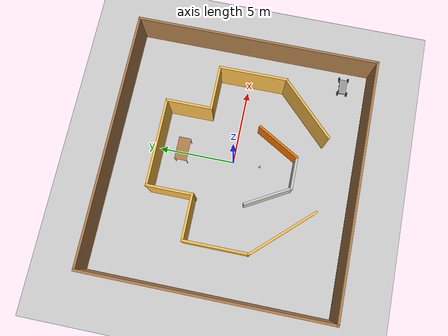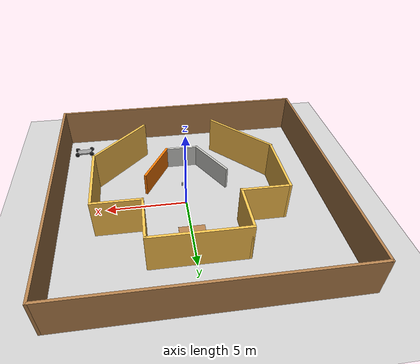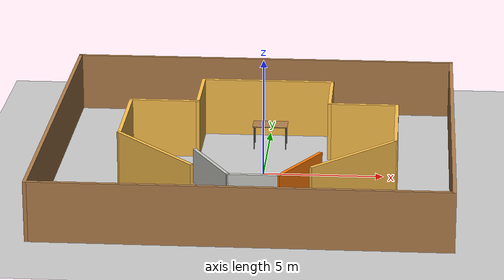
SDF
<sdf version="1.6">
 <world name="default">
  <light name="sun" type="directional">
   <pose>0 0 10 0 -0 0</pose>
   <diffuse>0.8 0.8 0.8 1</diffuse>
   <specular>0.1 0.1 0.1 1</specular>
   <attenuation>
    <range>1000</range>
    <constant>0.9</constant>
    <linear>0.01</linear>
    <quadratic>0.001</quadratic>
   </attenuation>
   <direction>-0.5 0.5 -1</direction>
  </light>
  <model name="ground_plane">
   <static>1</static>
   <link name="link">
    <collision name="collision">
     <geometry><plane><normal>0 0 1</normal><size>100 100</size></plane></geometry>
     <surface><friction><ode><mu>100</mu><mu2>50</mu2></ode></friction></surface>
    </collision>
    <visual name="visual">
     <cast_shadows>0</cast_shadows>
     <geometry><plane><normal>0 0 1</normal><size>100 100</size></plane></geometry>
     <material>
      <script><uri>file://media/materials/scripts/gazebo.material</uri><name>Gazebo/Grey</name></script>
     </material>
    </visual>
   </link>
  </model>
  <gravity>0 0 -9.8</gravity>
  <magnetic_field>6e-06 2.3e-05 -4.2e-05</magnetic_field>
  <atmosphere type="adiabatic"/>
  <physics name="default_physics" default="0" type="ode">
   <max_step_size>0.001</max_step_size>
   <real_time_factor>1</real_time_factor>
   <real_time_update_rate>1000</real_time_update_rate>
  </physics>
  <scene><ambient>0.4 0.4 0.4 1</ambient><background>0.7 0.7 0.7 1</background><shadows>1</shadows></scene>
  <spherical_coordinates>
   <surface_model>EARTH_WGS84</surface_model>
   <latitude_deg>0</latitude_deg>
   <longitude_deg>0</longitude_deg>
   <elevation>0</elevation>
   <heading_deg>0</heading_deg>
  </spherical_coordinates>
  <model name="model">
   <pose>-0.45586 -0.030375 0 0 -0 0</pose>
   <link name="Wall_10">
    <collision name="Wall_10_Collision">
     <geometry><box><size>4.25 0.15 2.5</size></box></geometry>
     <pose>0 0 1.25 0 -0 0</pose>
    </collision>
    <visual name="Wall_10_Visual">
     <pose>0 0 1.25 0 -0 0</pose>
     <geometry><box><size>4.25 0.15 2.5</size></box></geometry>
     <material>
      <script><uri>file://media/materials/scripts/gazebo.material</uri><name>Gazebo/Grey</name></script>
      <ambient>1 0.764706 0.305882 1</ambient>
     </material>
    </visual>
    <pose>-5.32469 -0.033737 0 0 -0 1.5708</pose>
   </link>
   <link name="Wall_11">
    <collision name="Wall_11_Collision">
     <geometry><box><size>3 0.15 2.5</size></box></geometry>
     <pose>0 0 1.25 0 -0 0</pose>
    </collision>
    <visual name="Wall_11_Visual">
     <pose>0 0 1.25 0 -0 0</pose>
     <geometry><box><size>3 0.15 2.5</size></box></geometry>
     <material>
      <script><uri>file://media/materials/scripts/gazebo.material</uri><name>Gazebo/Grey</name></script>
      <ambient>1 0.764706 0.305882 1</ambient>
     </material>
    </visual>
    <pose>-3.89969 2.01626 0 0 -0 0</pose>
   </link>
   <link name="Wall_12">
    <collision name="Wall_12_Collision">
     <geometry><box><size>3.0561 0.15 2.5</size></box></geometry>
     <pose>0 0 1.25 0 -0 0</pose>
    </collision>
    <visual name="Wall_12_Visual">
     <pose>0 0 1.25 0 -0 0</pose>
     <geometry><box><size>3.0561 0.15 2.5</size></box></geometry>
     <material>
      <script><uri>file://media/materials/scripts/gazebo.material</uri><name>Gazebo/Grey</name></script>
      <ambient>1 0.764706 0.305882 1</ambient>
     </material>
    </visual>
    <pose>-2.47469 3.44126 0 0 -0 1.5708</pose>
   </link>
   <link name="Wall_13">
    <collision name="Wall_13_Collision">
     <geometry><box><size>5.75 0.15 2.5</size></box></geometry>
     <pose>0 0 1.25 0 -0 0</pose>
    </collision>
    <visual name="Wall_13_Visual">
     <pose>0 0 1.25 0 -0 0</pose>
     <geometry><box><size>5.75 0.15 2.5</size></box></geometry>
     <material>
      <script><uri>file://media/materials/scripts/gazebo.material</uri><name>Gazebo/Grey</name></script>
      <ambient>1 0.764706 0.305882 1</ambient>
     </material>
    </visual>
    <pose>0.32531 4.89431 0 0 -0 0</pose>
   </link>
   <link name="Wall_14">
    <collision name="Wall_14_Collision">
     <geometry><box><size>2.99241 0.15 2.5</size></box></geometry>
     <pose>0 0 1.25 0 -0 0</pose>
    </collision>
    <visual name="Wall_14_Visual">
     <pose>0 0 1.25 0 -0 0</pose>
     <geometry><box><size>2.99241 0.15 2.5</size></box></geometry>
     <material>
      <script><uri>file://media/materials/scripts/gazebo.material</uri><name>Gazebo/Grey</name></script>
      <ambient>1 0.764706 0.305882 1</ambient>
     </material>
    </visual>
    <pose>3.12531 3.44506 0 0 0 -1.5708</pose>
   </link>
   <link name="Wall_15">
    <collision name="Wall_15_Collision">
     <geometry><box><size>3 0.15 2.5</size></box></geometry>
     <pose>0 0 1.25 0 -0 0</pose>
    </collision>
    <visual name="Wall_15_Visual">
     <pose>0 0 1.25 0 -0 0</pose>
     <geometry><box><size>3 0.15 2.5</size></box></geometry>
     <material>
      <script><uri>file://media/materials/scripts/gazebo.material</uri><name>Gazebo/Grey</name></script>
      <ambient>1 0.764706 0.305882 1</ambient>
     </material>
    </visual>
    <pose>4.55031 2.02386 0 0 -0 0</pose>
   </link>
   <link name="Wall_16">
    <collision name="Wall_16_Collision">
     <geometry><box><size>4.5 0.15 2.5</size></box></geometry>
     <pose>0 0 1.25 0 -0 0</pose>
    </collision>
    <visual name="Wall_16_Visual">
     <pose>0 0 1.25 0 -0 0</pose>
     <geometry><box><size>4.5 0.15 2.5</size></box></geometry>
     <material>
      <script><uri>file://media/materials/scripts/gazebo.material</uri><name>Gazebo/Grey</name></script>
      <ambient>1 0.764706 0.305882 1</ambient>
     </material>
    </visual>
    <pose>5.97531 -0.151144 0 0 0 -1.5708</pose>
   </link>
   <link name="Wall_17">
    <collision name="Wall_17_Collision">
     <geometry><box><size>4.75 0.15 2.5</size></box></geometry>
     <pose>0 0 1.25 0 -0 0</pose>
    </collision>
    <visual name="Wall_17_Visual">
     <pose>0 0 1.25 0 -0 0</pose>
     <geometry><box><size>4.75 0.15 2.5</size></box></geometry>
     <material>
      <script><uri>file://media/materials/scripts/gazebo.material</uri><name>Gazebo/Grey</name></script>
      <ambient>1 0.764706 0.305882 1</ambient>
     </material>
    </visual>
    <pose>4.34896 -3.95249 0 0 0 -2.35619</pose>
   </link>
   <link name="Wall_19">
    <collision name="Wall_19_Collision">
     <geometry><box><size>3.2865 0.15 1.5</size></box></geometry>
     <pose>0 0 0.75 0 -0 0</pose>
    </collision>
    <visual name="Wall_19_Visual">
     <pose>0 0 0.75 0 -0 0</pose>
     <geometry><box><size>3.2865 0.15 1.5</size></box></geometry>
     <material>
      <script><uri>file://media/materials/scripts/gazebo.material</uri><name>Gazebo/CeilingTiled</name></script>
      <ambient>0.996078 0.47451 0.0196078 1</ambient>
     </material>
    </visual>
    <pose>-1.51014 -2.59112 0 0 0 -1.05394</pose>
   </link>
   <link name="Wall_20">
    <collision name="Wall_20_Collision">
     <geometry><box><size>2.1584 0.15 1.5</size></box></geometry>
     <pose>0 0 0.75 0 -0 0</pose>
    </collision>
    <visual name="Wall_20_Visual">
     <pose>0 0 0.75 0 -0 0</pose>
     <geometry><box><size>2.1584 0.15 1.5</size></box></geometry>
     <material>
      <script><uri>file://media/materials/scripts/gazebo.material</uri><name>Gazebo/CeilingTiled</name></script>
      <ambient>0.996078 0.47451 0.0196078 1</ambient>
     </material>
    </visual>
    <pose>0.269059 -3.95478 0 0 0 -0.000157</pose>
   </link>
   <link name="Wall_21">
    <collision name="Wall_21_Collision">
     <geometry><box><size>3.25028 0.15 1.5</size></box></geometry>
     <pose>0 0 0.75 0 -0 0</pose>
    </collision>
    <visual name="Wall_21_Visual">
     <pose>0 0 0.75 0 -0 0</pose>
     <geometry><box><size>3.25028 0.15 1.5</size></box></geometry>
     <material>
      <script><uri>file://media/materials/scripts/gazebo.material</uri><name>Gazebo/Grey</name></script>
      <ambient>0.996078 0.47451 0.0196078 1</ambient>
     </material>
    </visual>
    <pose>2.09091 -2.61244 0 0 -0 1.04725</pose>
   </link>
   <link name="Wall_4">
    <collision name="Wall_4_Collision">
     <geometry><box><size>16 0.15 2.5</size></box></geometry>
     <pose>0 0 1.25 0 -0 0</pose>
    </collision>
    <visual name="Wall_4_Visual">
     <pose>0 0 1.25 0 -0 0</pose>
     <geometry><box><size>16 0.15 2.5</size></box></geometry>
     <material>
      <script><uri>file://media/materials/scripts/gazebo.material</uri><name>Gazebo/Wood</name></script>
      <ambient>1 1 1 1</ambient>
     </material>
    </visual>
    <pose>-8.3 0 0 0 -0 1.5708</pose>
   </link>
   <link name="Wall_5">
    <collision name="Wall_5_Collision">
     <geometry><box><size>16.75 0.15 2.5</size></box></geometry>
     <pose>0 0 1.25 0 -0 0</pose>
    </collision>
    <visual name="Wall_5_Visual">
     <pose>0 0 1.25 0 -0 0</pose>
     <geometry><box><size>16.75 0.15 2.5</size></box></geometry>
     <material>
      <script><uri>file://media/materials/scripts/gazebo.material</uri><name>Gazebo/Wood</name></script>
      <ambient>1 1 1 1</ambient>
     </material>
    </visual>
    <pose>0 7.925 0 0 -0 0</pose>
   </link>
   <link name="Wall_6">
    <collision name="Wall_6_Collision">
     <geometry><box><size>16 0.15 2.5</size></box></geometry>
     <pose>0 0 1.25 0 -0 0</pose>
    </collision>
    <visual name="Wall_6_Visual">
     <pose>0 0 1.25 0 -0 0</pose>
     <geometry><box><size>16 0.15 2.5</size></box></geometry>
     <material>
      <script><uri>file://media/materials/scripts/gazebo.material</uri><name>Gazebo/Wood</name></script>
      <ambient>1 1 1 1</ambient>
     </material>
    </visual>
    <pose>8.3 0 0 0 0 -1.5708</pose>
   </link>
   <link name="Wall_7">
    <collision name="Wall_7_Collision">
     <geometry><box><size>16.75 0.15 2.5</size></box></geometry>
     <pose>0 0 1.25 0 -0 0</pose>
    </collision>
    <visual name="Wall_7_Visual">
     <pose>0 0 1.25 0 -0 0</pose>
     <geometry><box><size>16.75 0.15 2.5</size></box></geometry>
     <material>
      <script><uri>file://media/materials/scripts/gazebo.material</uri><name>Gazebo/Wood</name></script>
      <ambient>1 1 1 1</ambient>
     </material>
    </visual>
    <pose>0 -7.925 0 0 -0 3.14159</pose>
   </link>
   <link name="Wall_9">
    <collision name="Wall_9_Collision">
     <geometry><box><size>4.92449 0.15 2.5</size></box></geometry>
     <pose>0 0 1.25 0 -0 0</pose>
    </collision>
    <visual name="Wall_9_Visual">
     <pose>0 0 1.25 0 -0 0</pose>
     <geometry><box><size>4.92449 0.15 2.5</size></box></geometry>
     <material>
      <script><uri>file://media/materials/scripts/gazebo.material</uri><name>Gazebo/Grey</name></script>
      <ambient>1 0.764706 0.305882 1</ambient>
     </material>
    </visual>
    <pose>-3.69835 -3.83129 0 0 -0 2.32029</pose>
   </link>
   <static>1</static>
  </model>
  <plugin name="collision_map_creator" filename="libcollision_map_creator.so"/>
  <model name="cart_rigid_suspension">
   <link name="chassis">
    <pose>0 0 0.15 0 -0 0</pose>
    <inertial>
     <pose>0.1 0 0 0 -0 0</pose>
     <mass>10</mass>
     <inertia>
      <ixx>0.216667</ixx>
      <iyy>0.841667</iyy>
      <izz>1.04167</izz>
      <ixy>0</ixy>
      <ixz>0</ixz>
      <iyz>0</iyz>
     </inertia>
    </inertial>
    <collision name="collision"><geometry><box><size>1 0.5 0.1</size></box></geometry></collision>
    <visual name="visual">
     <geometry><box><size>1 0.5 0.1</size></box></geometry>
     <material>
      <script><uri>file://media/materials/scripts/gazebo.material</uri><name>Gazebo/Grey</name></script>
     </material>
    </visual>
   </link>
   <link name="wheel_front_left">
    <pose>0.5 0.298 0.15 -1.5708 0 0</pose>
    <inertial>
     <mass>0.5</mass>
     <inertia>
      <ixx>0.00307917</ixx>
      <iyy>0.00307917</iyy>
      <izz>0.005625</izz>
      <ixy>0</ixy>
      <ixz>0</ixz>
      <iyz>0</iyz>
     </inertia>
    </inertial>
    <collision name="collision">
     <geometry><cylinder><radius>0.15</radius><length>0.08</length></cylinder></geometry>
    </collision>
    <visual name="visual">
     <geometry><cylinder><radius>0.15</radius><length>0.08</length></cylinder></geometry>
     <material>
      <script><uri>file://media/materials/scripts/gazebo.material</uri><name>Gazebo/Black</name></script>
     </material>
    </visual>
   </link>
   <joint name="wheel_front_left_spin" type="revolute">
    <parent>chassis</parent>
    <child>wheel_front_left</child>
    <axis>
     <xyz>0 0 1</xyz>
     <use_parent_model_frame>0</use_parent_model_frame>
     <limit><lower>-1e+16</lower><upper>1e+16</upper></limit>
     <dynamics><spring_reference>0</spring_reference><spring_stiffness>0</spring_stiffness></dynamics>
    </axis>
   </joint>
   <link name="wheel_front_right">
    <pose>0.5 -0.298 0.15 -1.5708 0 0</pose>
    <inertial>
     <mass>0.5</mass>
     <inertia>
      <ixx>0.00307917</ixx>
      <iyy>0.00307917</iyy>
      <izz>0.005625</izz>
      <ixy>0</ixy>
      <ixz>0</ixz>
      <iyz>0</iyz>
     </inertia>
    </inertial>
    <collision name="collision">
     <geometry><cylinder><radius>0.15</radius><length>0.08</length></cylinder></geometry>
    </collision>
    <visual name="visual">
     <geometry><cylinder><radius>0.15</radius><length>0.08</length></cylinder></geometry>
     <material>
      <script><uri>file://media/materials/scripts/gazebo.material</uri><name>Gazebo/Black</name></script>
     </material>
    </visual>
   </link>
   <joint name="wheel_front_right_spin" type="revolute">
    <parent>chassis</parent>
    <child>wheel_front_right</child>
    <axis>
     <xyz>0 0 1</xyz>
     <use_parent_model_frame>0</use_parent_model_frame>
     <limit><lower>-1e+16</lower><upper>1e+16</upper></limit>
     <dynamics><spring_reference>0</spring_reference><spring_stiffness>0</spring_stiffness></dynamics>
    </axis>
   </joint>
   <link name="wheel_rear_left">
    <pose>-0.5 0.298 0.15 -1.5708 0 0</pose>
    <inertial>
     <mass>0.5</mass>
     <inertia>
      <ixx>0.00307917</ixx>
      <iyy>0.00307917</iyy>
      <izz>0.005625</izz>
      <ixy>0</ixy>
      <ixz>0</ixz>
      <iyz>0</iyz>
     </inertia>
    </inertial>
    <collision name="collision">
     <geometry><cylinder><radius>0.15</radius><length>0.08</length></cylinder></geometry>
    </collision>
    <visual name="visual">
     <geometry><cylinder><radius>0.15</radius><length>0.08</length></cylinder></geometry>
     <material>
      <script><uri>file://media/materials/scripts/gazebo.material</uri><name>Gazebo/Black</name></script>
     </material>
    </visual>
   </link>
   <joint name="wheel_rear_left_spin" type="revolute">
    <parent>chassis</parent>
    <child>wheel_rear_left</child>
    <axis>
     <xyz>0 0 1</xyz>
     <use_parent_model_frame>0</use_parent_model_frame>
     <limit><lower>-1e+16</lower><upper>1e+16</upper></limit>
     <dynamics><spring_reference>0</spring_reference><spring_stiffness>0</spring_stiffness></dynamics>
    </axis>
   </joint>
   <link name="wheel_rear_right">
    <pose>-0.5 -0.298 0.15 -1.5708 0 0</pose>
    <inertial>
     <mass>0.5</mass>
     <inertia>
      <ixx>0.00307917</ixx>
      <iyy>0.00307917</iyy>
      <izz>0.005625</izz>
      <ixy>0</ixy>
      <ixz>0</ixz>
      <iyz>0</iyz>
     </inertia>
    </inertial>
    <collision name="collision">
     <geometry><cylinder><radius>0.15</radius><length>0.08</length></cylinder></geometry>
    </collision>
    <visual name="visual">
     <geometry><cylinder><radius>0.15</radius><length>0.08</length></cylinder></geometry>
     <material>
      <script><uri>file://media/materials/scripts/gazebo.material</uri><name>Gazebo/Black</name></script>
     </material>
    </visual>
   </link>
   <joint name="wheel_rear_right_spin" type="revolute">
    <parent>chassis</parent>
    <child>wheel_rear_right</child>
    <axis>
     <xyz>0 0 1</xyz>
     <use_parent_model_frame>0</use_parent_model_frame>
     <limit><lower>-1e+16</lower><upper>1e+16</upper></limit>
     <dynamics><spring_reference>0</spring_reference><spring_stiffness>0</spring_stiffness></dynamics>
    </axis>
   </joint>
   <pose>6.72039 -6.31839 0 0 -0 0.032446</pose>
  </model>
  <model name="table">
   <static>1</static>
   <link name="link">
    <collision name="surface">
     <pose>0 0 1 0 -0 0</pose>
     <geometry><box><size>1.5 0.8 0.03</size></box></geometry>
     <surface><friction><ode><mu>0.6</mu><mu2>0.6</mu2></ode></friction></surface>
    </collision>
    <visual name="visual1">
     <pose>0 0 1 0 -0 0</pose>
     <geometry><box><size>1.5 0.8 0.03</size></box></geometry>
     <material>
      <script><uri>file://media/materials/scripts/gazebo.material</uri><name>Gazebo/Wood</name></script>
     </material>
    </visual>
    <collision name="front_left_leg">
     <pose>0.68 0.38 0.5 0 -0 0</pose>
     <geometry><cylinder><radius>0.02</radius><length>1</length></cylinder></geometry>
    </collision>
    <visual name="front_left_leg">
     <pose>0.68 0.38 0.5 0 -0 0</pose>
     <geometry><cylinder><radius>0.02</radius><length>1</length></cylinder></geometry>
     <material>
      <script><uri>file://media/materials/scripts/gazebo.material</uri><name>Gazebo/Grey</name></script>
     </material>
    </visual>
    <collision name="front_right_leg">
     <pose>0.68 -0.38 0.5 0 -0 0</pose>
     <geometry><cylinder><radius>0.02</radius><length>1</length></cylinder></geometry>
    </collision>
    <visual name="front_right_leg">
     <pose>0.68 -0.38 0.5 0 -0 0</pose>
     <geometry><cylinder><radius>0.02</radius><length>1</length></cylinder></geometry>
     <material>
      <script><uri>file://media/materials/scripts/gazebo.material</uri><name>Gazebo/Grey</name></script>
     </material>
    </visual>
    <collision name="back_right_leg">
     <pose>-0.68 -0.38 0.5 0 -0 0</pose>
     <geometry><cylinder><radius>0.02</radius><length>1</length></cylinder></geometry>
    </collision>
    <visual name="back_right_leg">
     <pose>-0.68 -0.38 0.5 0 -0 0</pose>
     <geometry><cylinder><radius>0.02</radius><length>1</length></cylinder></geometry>
     <material>
      <script><uri>file://media/materials/scripts/gazebo.material</uri><name>Gazebo/Grey</name></script>
     </material>
    </visual>
    <collision name="back_left_leg">
     <pose>-0.68 0.38 0.5 0 -0 0</pose>
     <geometry><cylinder><radius>0.02</radius><length>1</length></cylinder></geometry>
    </collision>
    <visual name="back_left_leg">
     <pose>-0.68 0.38 0.5 0 -0 0</pose>
     <geometry><cylinder><radius>0.02</radius><length>1</length></cylinder></geometry>
     <material>
      <script><uri>file://media/materials/scripts/gazebo.material</uri><name>Gazebo/Grey</name></script>
     </material>
    </visual>
   </link>
   <pose>0.073984 3.39373 0 0 -0 0</pose>
  </model>
  <model name="beer">
   <link name="link">
    <pose>0 0 0.115 0 -0 0</pose>
    <inertial>
     <mass>0.39</mass>
     <inertia><ixx>0.00058</ixx><ixy>0</ixy><ixz>0</ixz><iyy>0.00058</iyy><iyz>0</iyz><izz>0.00019</izz></inertia>
    </inertial>
    <collision name="collision">
     <geometry><cylinder><radius>0.055</radius><length>0.23</length></cylinder></geometry>
    </collision>
    <visual name="visual">
     <geometry><cylinder><radius>0.055</radius><length>0.23</length></cylinder></geometry>
     <material>
      <script>
       <uri>model://beer/materials/scripts</uri>
       <uri>model://beer/materials/textures</uri>
       <name>Beer/Diffuse</name>
      </script>
     </material>
    </visual>
   </link>
   <pose>0.058974 -1.77031 -2e-06 1e-06 0 -7e-06</pose>
  </model>
 </world>
</sdf>
